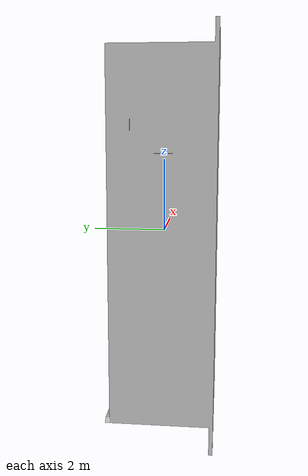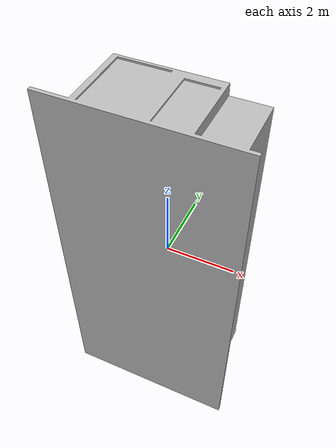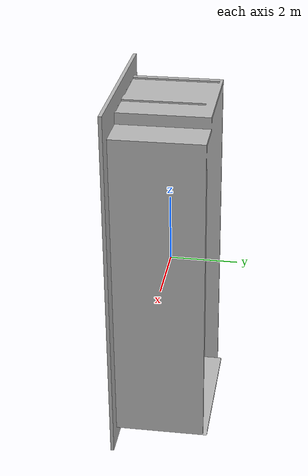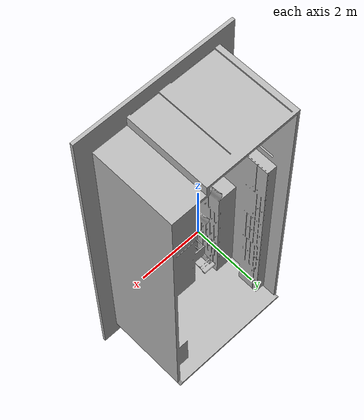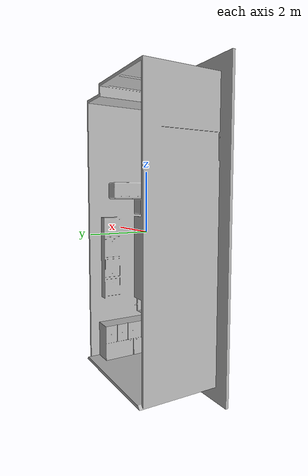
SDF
<?xml version='1.0'?>
<sdf version='1.6'>
  <model name='room912'>
    <static>true</static>
    <link name='link'>
      <collision name='collision'>
        <geometry>
          <mesh>
            <uri>model://room912/meshes/room912.stl</uri>
          </mesh>
        </geometry>
      </collision>

      <visual name='visual'>
        <geometry>
          <mesh>
            <uri>model://room912/meshes/room912.stl</uri>
          </mesh>
        </geometry>
      </visual>
    </link>
  </model>
</sdf>
